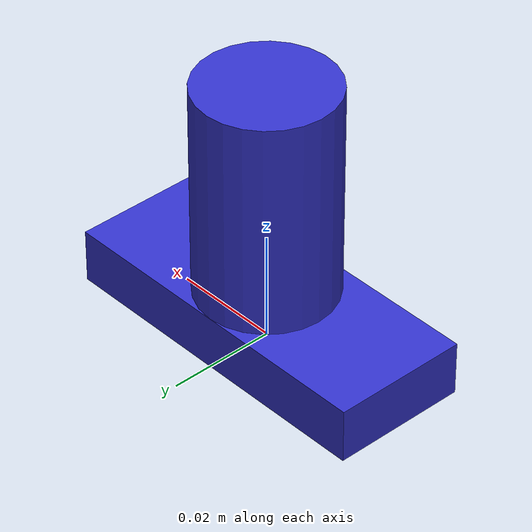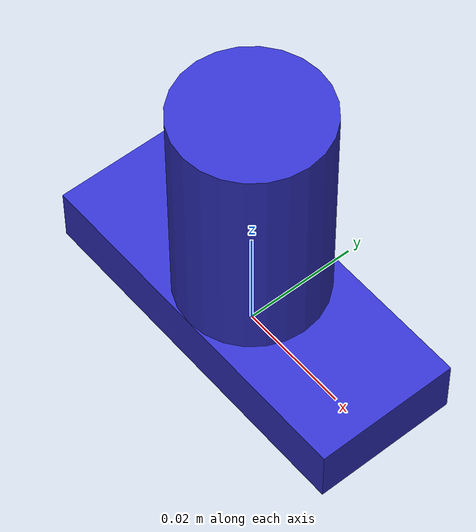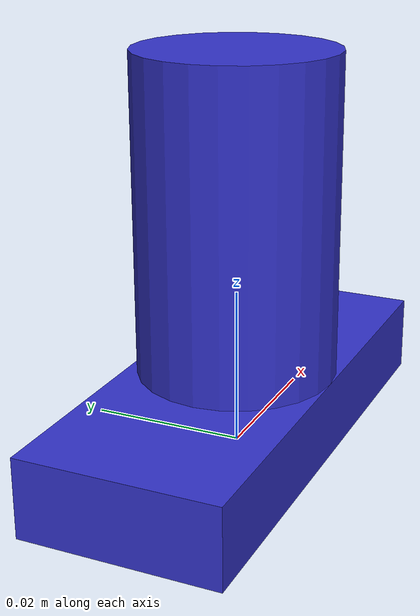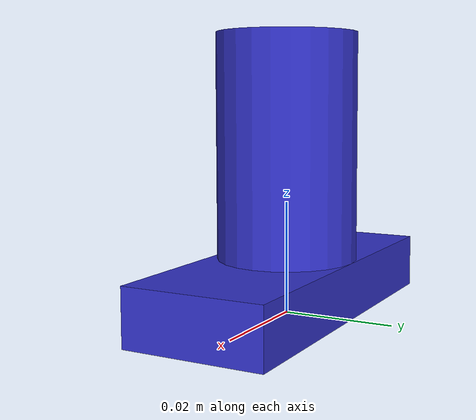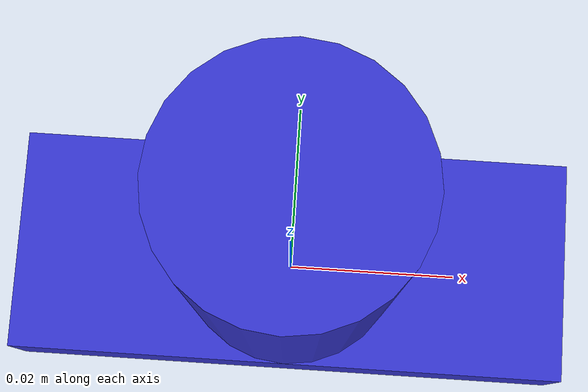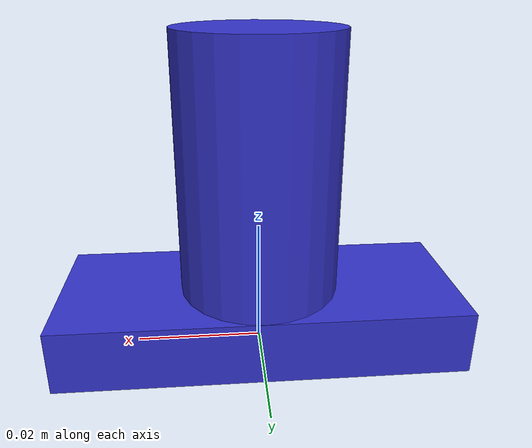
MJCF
<mujoco model="assembly_peg">
  <compiler angle="radian" />
  <option timestep="0.001"/>
  <worldbody>
    <!-- peg_pickup (site) : top position for picking up
    peg_base (site) : bottom postion of peg   -->

    <body name="peg_base" pos="0 0 0">
        <site name="peg_base" pos="0 0 0.00" group="4"/>
        <body name="peg_box" pos="0 0 0.005">
          <!-- Tip geom: box with half-sizes (0.02, 0.0125, 0.01) corresponding to (40mm, 25mm, 20mm) overall -->
          <geom name="tip_geom" type="box" size="0.0315 0.0125 0.005" rgba="0.2 0.2 0.8 1"/>
        </body>
      <body name="cylinder" pos="0 0 0.03">
        <geom name="cylinder_geom" type="cylinder" size="0.0125 0.02" rgba="0.2 0.2 0.8 1"/>
        <site name="peg_pickup" pos="0 0 0.02" group="4"/>
      </body>

    </body>
  </worldbody>
</mujoco>
